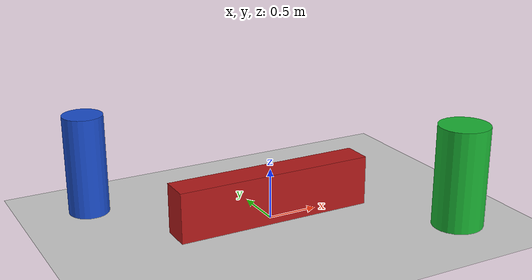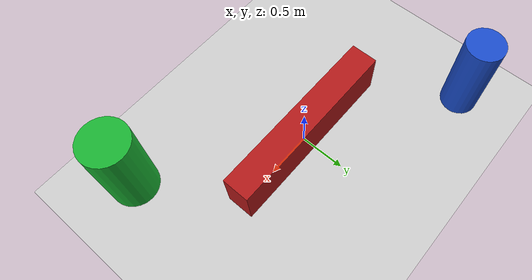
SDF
<?xml version="1.0" ?>
<sdf version="1.7">
  <world name="multi_robot_arena">
    <!-- Fix for "Sensors failed to initialize" -->
    <scene>
      <shadows>true</shadows>
    </scene>

    <!-- Increase timeout for model plugin loading (default is 30s) -->
    <model_plugin_loading_timeout>60</model_plugin_loading_timeout>

    <plugin name="gazebo_ros_state" filename="libgazebo_ros_state.so"/>

    <physics type="ode">
      <real_time_update_rate>1000.0</real_time_update_rate>
      <max_step_size>0.001</max_step_size>
      <real_time_factor>1</real_time_factor>
      <ode>
        <solver>
          <type>quick</type>
          <iters>150</iters>
          <precon_iters>0</precon_iters>
          <sor>1.400000</sor>
          <use_dynamic_moi_rescaling>1</use_dynamic_moi_rescaling>
        </solver>
        <constraints>
          <cfm>0.00001</cfm>
          <erp>0.2</erp>
          <contact_max_correcting_vel>2000.000000</contact_max_correcting_vel>
          <contact_surface_layer>0.01000</contact_surface_layer>
        </constraints>
      </ode>
    </physics>

    <gravity>0 0 -9.81</gravity>
    <include>
      <uri>model://ground_plane</uri>
    </include>
    <include>
      <uri>model://sun</uri>
    </include>

    <model name="center_wall">
      <static>true</static>
      <pose>0 0 0.25 0 0 0</pose>
      <link name="link">
        <collision name="collision">
          <geometry>
            <box><size>2 0.3 0.5</size></box>
          </geometry>
        </collision>
        <visual name="visual">
          <geometry>
            <box><size>2 0.3 0.5</size></box>
          </geometry>
          <material>
            <ambient>0.7 0.1 0.1 1</ambient>
          </material>
        </visual>
      </link>
    </model>

    <model name="pillar_left">
      <static>true</static>
      <pose>-1.5 1.0 0.5 0 0 0</pose>
      <link name="link">
        <collision name="collision">
          <geometry><cylinder><radius>0.2</radius><length>1.0</length></cylinder></geometry>
        </collision>
        <visual name="visual">
          <geometry><cylinder><radius>0.2</radius><length>1.0</length></cylinder></geometry>
          <material><ambient>0.1 0.3 0.8 1</ambient></material>
        </visual>
      </link>
    </model>

    <model name="pillar_right">
      <static>true</static>
      <pose>1.5 -1.0 0.5 0 0 0</pose>
      <link name="link">
        <collision name="collision">
          <geometry><cylinder><radius>0.25</radius><length>1.0</length></cylinder></geometry>
        </collision>
        <visual name="visual">
          <geometry><cylinder><radius>0.25</radius><length>1.0</length></cylinder></geometry>
          <material><ambient>0.1 0.7 0.2 1</ambient></material>
        </visual>
      </link>
    </model>

  </world>
</sdf>
